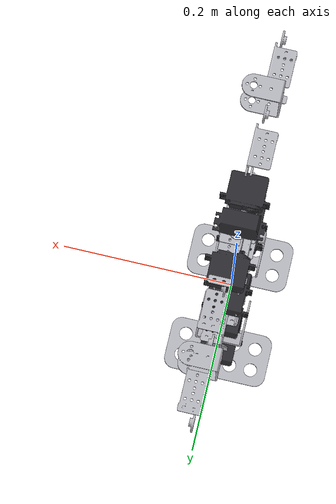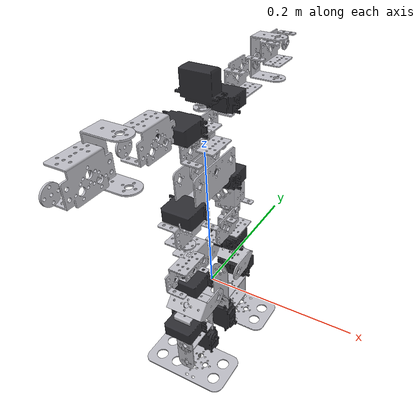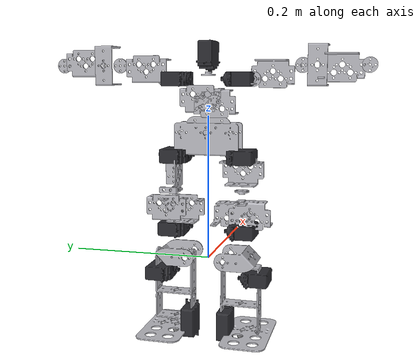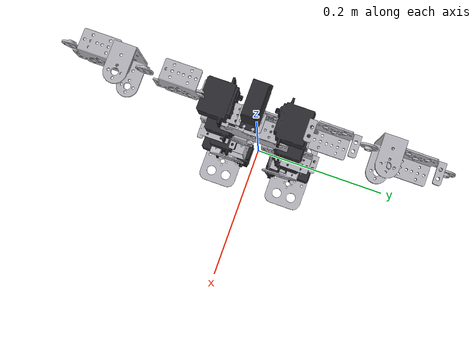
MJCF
<?xml version='1.0' encoding='utf-8'?>
<mujoco model="twoleg">
  <compiler angle="radian" meshdir="assets" autolimits="true" />
  <visual>
    <global offwidth="1024" offheight="1024" />
    <headlight ambient="0.55 0.55 0.55" diffuse="0.6 0.6 0.6" specular="0.2 0.2 0.2" />
  </visual>
  <default>
    <default class="twoleg">
      <joint damping="0.05" frictionloss="0.02" armature="0.002" />
      <position kp="20" dampratio="1" forcerange="-3 3" ctrlrange="-1.6 1.6" />
      <default class="visual"><geom type="mesh" contype="0" conaffinity="0" group="2" /></default>
      <default class="collision"><geom group="3" /></default>
    </default>
  </default>
  <asset>
    <mesh name="foot" file="foot_c.stl" scale="0.001 0.001 0.001" />
    <mesh name="shortU" file="shortU_c.stl" scale="0.001 0.001 0.001" />
    <mesh name="longU" file="longU_c.stl" scale="0.001 0.001 0.001" />
    <mesh name="multi" file="multi_c.stl" scale="0.001 0.001 0.001" />
    <mesh name="straight" file="straight_c.stl" scale="0.001 0.001 0.001" />
    <mesh name="L_bracket" file="L_bracket_c.stl" scale="0.001 0.001 0.001" />
    <mesh name="U_beam" file="U_beam_c.stl" scale="0.001 0.001 0.001" />
    <mesh name="slantU" file="slantU_c.stl" scale="0.001 0.001 0.001" />
    <mesh name="servo" file="servo_c.stl" scale="0.001 0.001 0.001" />
    <mesh name="horn" file="horn_c.stl" scale="0.001 0.001 0.001" />
    <mesh name="bearing" file="bearing_c.stl" scale="0.001 0.001 0.001" />
    <material name="bracket" rgba="0.75 0.75 0.78 1" />
    <material name="dark" rgba="0.18 0.18 0.2 1" />
  </asset>
  <worldbody>

    <body name="torso" pos="0 0 0.165" childclass="twoleg">
      <freejoint name="root_joint" />
      <inertial pos="0 0 0.04" mass="0.40" diaginertia="0.0015 0.0015 0.0015" />

      <geom type="mesh" mesh="U_beam" material="bracket" class="visual" quat="0 0 0.707107 0.707107" />

      <geom type="mesh" mesh="straight" material="bracket" class="visual" pos="0 0 0.022" quat="0.5 0.5 0.5 0.5" />
      <geom type="mesh" mesh="multi" material="bracket" class="visual" pos="0 0.01 0.055" quat="0.5 0.5 0.5 0.5" />
      <geom type="mesh" mesh="multi" material="bracket" class="visual" pos="0 -0.01 0.055" quat="0.5 -0.5 0.5 -0.5" />

      <geom type="mesh" mesh="servo" material="dark" class="visual" pos="0 0 0.115" quat="0 0.7071068 -0.7071068 0" />
      <body name="head" pos="0 0 0.10">
        <joint name="head_yaw" type="hinge" axis="0 0 1" range="-1.0 1.0" />
        <inertial pos="0 0 0.02" mass="0.06" diaginertia="0.00005 0.00005 0.00005" />
        <geom type="mesh" mesh="horn" material="bracket" class="visual" pos="0.000000 0.000000 -0.009000" quat="-0.5000000 -0.5000000 0.5000000 0.5000000" />
      </body>

      <geom type="mesh" mesh="servo" material="dark" class="visual" pos="0 0.042 0.085" quat="0.5 0.5 0.5 -0.5" />
      <body name="left_shoulder" pos="0 0.062 0.085">
        <joint name="left_shoulder_pitch" type="hinge" axis="0 1 0" range="-1.0 1.0" />
        <joint name="left_shoulder_roll" type="hinge" axis="1 0 0" range="-1.6 1.6" />
        <inertial pos="0 0.045 0.01" mass="0.06" diaginertia="0.0001 0.0001 0.0001" />
        <geom type="mesh" mesh="horn" material="bracket" class="visual" quat="0.7071068 0 0 -0.7071068" />
        <geom type="mesh" mesh="multi" material="bracket" class="visual" pos="0 0.025 0.01" quat="0.5 0.5 0.5 0.5" />
        <body name="left_elbow" pos="0 0.065 0.018">
          <joint name="left_elbow" type="hinge" axis="1 0 0" range="-1.6 1.6" />
          <inertial pos="0 0.04 0" mass="0.05" diaginertia="0.0001 0.0001 0.0001" />
          <geom type="mesh" mesh="shortU" material="bracket" class="visual" quat="0.5 0.5 0.5 -0.5" pos="0 0.02 0" />
          <geom type="mesh" mesh="horn" material="bracket" class="visual" quat="0.7071068 0 0 -0.7071068" />
          <geom type="mesh" mesh="multi" material="bracket" class="visual" pos="0 0.05 0" quat="0.5 0.5 0.5 0.5" />
          <geom type="mesh" mesh="horn" material="bracket" class="visual" pos="0 0.085 0" quat="0.7071068 0 0 -0.7071068" />
        </body>
      </body>

      <geom type="mesh" mesh="servo" material="dark" class="visual" pos="0 -0.042 0.085" quat="-0.5 0.5 0.5 0.5" />
      <body name="right_shoulder" pos="0 -0.062 0.085">
        <joint name="right_shoulder_pitch" type="hinge" axis="0 1 0" range="-1.0 1.0" />
        <joint name="right_shoulder_roll" type="hinge" axis="1 0 0" range="-1.6 1.6" />
        <inertial pos="0 -0.045 0.01" mass="0.06" diaginertia="0.0001 0.0001 0.0001" />
        <geom type="mesh" mesh="horn" material="bracket" class="visual" quat="0.7071068 0 0 0.7071068" />
        <geom type="mesh" mesh="multi" material="bracket" class="visual" pos="0 -0.025 0.01" quat="-0.5 0.5 0.5 -0.5" />
        <body name="right_elbow" pos="0 -0.065 0.018">
          <joint name="right_elbow" type="hinge" axis="1 0 0" range="-1.6 1.6" />
          <inertial pos="0 -0.04 0" mass="0.05" diaginertia="0.0001 0.0001 0.0001" />
          <geom type="mesh" mesh="shortU" material="bracket" class="visual" quat="-0.5 0.5 0.5 0.5" pos="0 -0.02 0" />
          <geom type="mesh" mesh="horn" material="bracket" class="visual" quat="0.7071068 0 0 0.7071068" />
          <geom type="mesh" mesh="multi" material="bracket" class="visual" pos="0 -0.05 0" quat="-0.5 0.5 0.5 -0.5" />
          <geom type="mesh" mesh="horn" material="bracket" class="visual" pos="0 -0.085 0" quat="0.7071068 0 0 0.7071068" />
        </body>
      </body>

      <geom type="mesh" mesh="servo" material="dark" class="visual" pos="0 0.045 -0.02" quat="0.5 0.5 -0.5 0.5" />
      <body name="left_hip_yaw" pos="0 0.048 -0.028">
        <joint name="left_hip_roll" type="hinge" axis="1 0 0" range="-0.8 0.8" />
        <inertial pos="0 0 -0.02" mass="0.06" diaginertia="0.0001 0.0001 0.0001" />
        <geom type="mesh" mesh="multi" material="bracket" class="visual" pos="0 0 -0.015" quat="0.5 -0.5 0.5 0.5" />

        <body name="left_hip_pitch" pos="0 0 -0.04">
          <joint name="left_hip_pitch" type="hinge" axis="0 1 0" range="-1.3 1.3" />
          <inertial pos="0 0 -0.035" mass="0.09" diaginertia="0.0002 0.0002 0.0002" />
          <geom type="mesh" mesh="horn" material="bracket" class="visual" quat="0.5 0.5 0.5 0.5" />
          <geom type="mesh" mesh="multi" material="bracket" class="visual" pos="0 0.012 -0.03" quat="0.5 0.5 0.5 0.5" />
          <geom type="mesh" mesh="multi" material="bracket" class="visual" pos="0 -0.012 -0.03" quat="0.5 0.5 -0.5 -0.5" />
          <geom type="mesh" mesh="servo" material="dark" class="visual" pos="0 0 -0.055" quat="0.5 0.5 -0.5 0.5" />

          <body name="left_knee" pos="0 0 -0.066">
            <joint name="left_knee" type="hinge" axis="0 1 0" range="-1.6 0.15" />
            <inertial pos="0 0 -0.035" mass="0.08" diaginertia="0.0002 0.0002 0.0002" />
            <geom type="mesh" mesh="slantU" material="bracket" class="visual" pos="0 0 -0.028" quat="0.5 0.5 0.5 0.5" />
            <geom type="mesh" mesh="servo" material="dark" class="visual" pos="0 0.02 -0.055" quat="0.5 0.5 -0.5 0.5" />
            <geom type="mesh" mesh="longU" material="bracket" class="visual" pos="0 0 -0.062" quat="0.5 0.5 0.5 0.5" />

            <body name="left_ankle" pos="0 0 -0.098">
              <joint name="left_ankle" type="hinge" axis="1 0 0" range="-0.9 0.9" />
              <inertial pos="0 0 -0.012" mass="0.06" diaginertia="0.0001 0.0001 0.0001" />
              <geom type="mesh" mesh="shortU" material="bracket" class="visual" pos="0 0 -0.01" quat="0.5 0.5 0.5 0.5" />
              <geom type="mesh" mesh="servo" material="dark" class="visual" pos="0 -0.022 -0.028" quat="0.5 0.5 0.5 0.5" />
              <geom type="mesh" mesh="foot" material="bracket" class="visual" pos="0 0.012 -0.04" />
              <geom type="box" size="0.062 0.032 0.003" pos="0 0.012 -0.043" rgba="0.2 0.2 0.2 1" group="3" name="left_foot_col" />
              <site name="left_foot" pos="0 0 -0.045" />
            </body>
          </body>
        </body>
      </body>

      <geom type="mesh" mesh="servo" material="dark" class="visual" pos="0 -0.045 -0.02" quat="-0.5 0.5 -0.5 -0.5" />
      <body name="right_hip_yaw" pos="0 -0.048 -0.028">
        <joint name="right_hip_roll" type="hinge" axis="1 0 0" range="-0.8 0.8" />
        <inertial pos="0 0 -0.02" mass="0.06" diaginertia="0.0001 0.0001 0.0001" />
        <geom type="mesh" mesh="multi" material="bracket" class="visual" pos="0 0 -0.015" quat="0.5 0.5 -0.5 -0.5" />
        <body name="right_hip_pitch" pos="0 0 -0.04">
          <joint name="right_hip_pitch" type="hinge" axis="0 1 0" range="-1.3 1.3" />
          <inertial pos="0 0 -0.035" mass="0.09" diaginertia="0.0002 0.0002 0.0002" />
          <geom type="mesh" mesh="horn" material="bracket" class="visual" quat="0.5 -0.5 0.5 -0.5" />
          <geom type="mesh" mesh="multi" material="bracket" class="visual" pos="0 -0.012 -0.03" quat="0.5 -0.5 0.5 -0.5" />
          <geom type="mesh" mesh="multi" material="bracket" class="visual" pos="0 0.012 -0.03" quat="0.5 -0.5 -0.5 0.5" />
          <geom type="mesh" mesh="servo" material="dark" class="visual" pos="0 0 -0.055" quat="0.5 -0.5 -0.5 -0.5" />
          <body name="right_knee" pos="0 0 -0.066">
            <joint name="right_knee" type="hinge" axis="0 1 0" range="-1.6 0.15" />
            <inertial pos="0 0 -0.035" mass="0.08" diaginertia="0.0002 0.0002 0.0002" />
            <geom type="mesh" mesh="slantU" material="bracket" class="visual" pos="0 0 -0.028" quat="0.5 -0.5 0.5 -0.5" />
            <geom type="mesh" mesh="servo" material="dark" class="visual" pos="0 -0.02 -0.055" quat="0.5 -0.5 -0.5 -0.5" />
            <geom type="mesh" mesh="longU" material="bracket" class="visual" pos="0 0 -0.062" quat="0.5 -0.5 0.5 -0.5" />
            <body name="right_ankle" pos="0 0 -0.098">
              <joint name="right_ankle" type="hinge" axis="1 0 0" range="-0.9 0.9" />
              <inertial pos="0 0 -0.012" mass="0.06" diaginertia="0.0001 0.0001 0.0001" />
              <geom type="mesh" mesh="shortU" material="bracket" class="visual" pos="0 0 -0.01" quat="0.5 -0.5 0.5 -0.5" />
              <geom type="mesh" mesh="servo" material="dark" class="visual" pos="0 0.022 -0.028" quat="0.5 -0.5 0.5 -0.5" />
              <geom type="mesh" mesh="foot" material="bracket" class="visual" pos="0 -0.012 -0.04" />
              <geom type="box" size="0.062 0.032 0.003" pos="0 -0.012 -0.043" rgba="0.2 0.2 0.2 1" group="3" name="right_foot_col" />
              <site name="right_foot" pos="0 0 -0.045" />
            </body>
          </body>
        </body>
      </body>
    </body>
  </worldbody>
  <keyframe>

    <key name="STAND" qpos="0 0 0.165 0.7071068 0 0 0.7071068 0 0 0.65 0.15 0 -0.65 -0.15 0 0 0 0 0 0 0 0" />
  </keyframe>
  <actuator>
    <position name="head_yaw" joint="head_yaw" />
    <position name="left_shoulder_pitch" joint="left_shoulder_pitch" />
    <position name="left_elbow" joint="left_elbow" />
    <position name="left_shoulder_roll" joint="left_shoulder_roll" />
    <position name="right_shoulder_pitch" joint="right_shoulder_pitch" />
    <position name="right_elbow" joint="right_elbow" />
    <position name="right_shoulder_roll" joint="right_shoulder_roll" />
    <position name="left_hip_roll" joint="left_hip_roll" />
    <position name="left_hip_pitch" joint="left_hip_pitch" />
    <position name="left_knee" joint="left_knee" />
    <position name="left_ankle" joint="left_ankle" />
    <position name="right_hip_roll" joint="right_hip_roll" />
    <position name="right_hip_pitch" joint="right_hip_pitch" />
    <position name="right_knee" joint="right_knee" />
    <position name="right_ankle" joint="right_ankle" />
  </actuator>
</mujoco>
